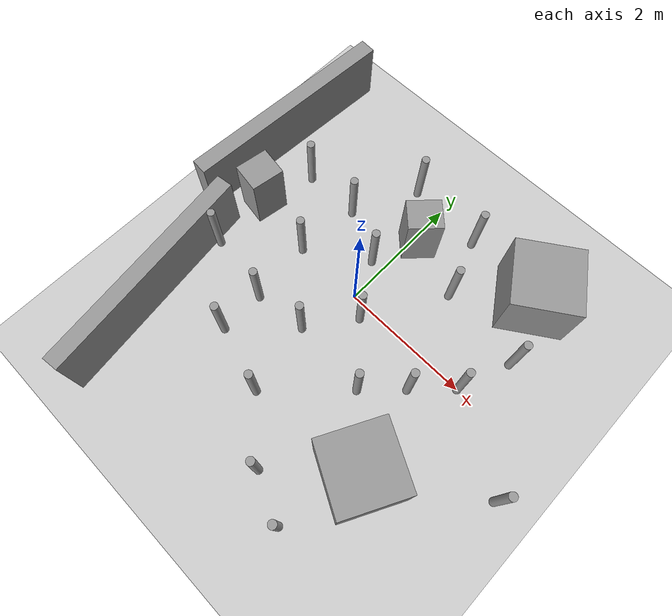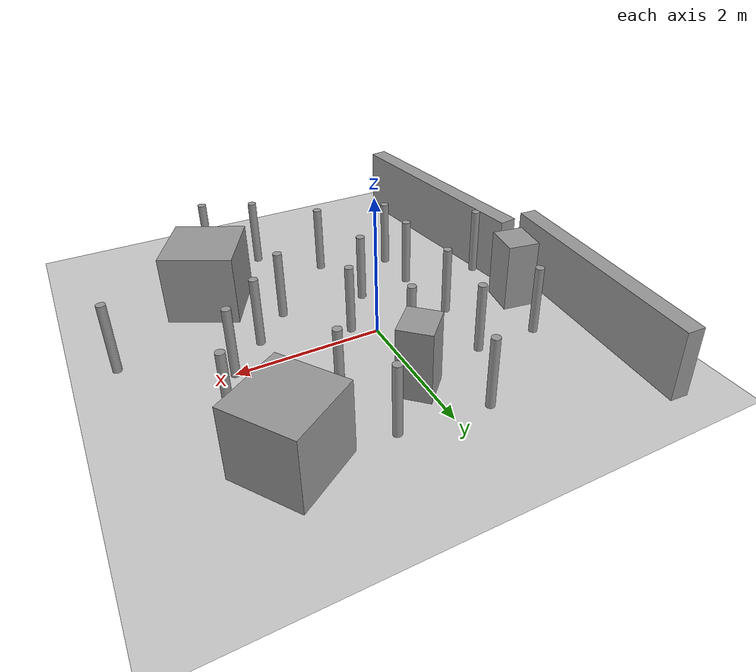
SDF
<sdf version="1.7">
 <world name="default">
  <light name="sun" type="directional">
   <pose>0 0 10 0 -0 0</pose>
   <diffuse>0.8 0.8 0.8 1</diffuse>
   <specular>0.2 0.2 0.2 1</specular>
   <attenuation>
    <range>1000</range>
    <constant>0.9</constant>
    <linear>0.01</linear>
    <quadratic>0.001</quadratic>
   </attenuation>
   <direction>-0.5 0.1 -0.9</direction>
   <spot><inner_angle>0</inner_angle><outer_angle>0</outer_angle><falloff>0</falloff></spot>
  </light>
  <model name="ground_plane">
   <static>1</static>
   <link name="link">
    <collision name="collision">
     <geometry><plane><normal>0 0 1</normal><size>100 100</size></plane></geometry>
     <surface><friction><ode><mu>100</mu><mu2>50</mu2></ode></friction></surface>
    </collision>
    <visual name="visual">
     <cast_shadows>0</cast_shadows>
     <geometry><plane><normal>0 0 1</normal><size>100 100</size></plane></geometry>
     <material>
      <script><uri>file://media/materials/scripts/gazebo.material</uri><name>Gazebo/Grey</name></script>
     </material>
    </visual>
   </link>
  </model>
  <gravity>0 0 -9.8</gravity>
  <magnetic_field>6e-06 2.3e-05 -4.2e-05</magnetic_field>
  <atmosphere type="adiabatic"/>
  <physics type="ode">
   <max_step_size>0.001</max_step_size>
   <real_time_factor>1</real_time_factor>
   <real_time_update_rate>1000</real_time_update_rate>
  </physics>
  <scene><ambient>0.4 0.4 0.4 1</ambient><background>0.7 0.7 0.7 1</background><shadows>1</shadows></scene>
  <spherical_coordinates>
   <surface_model>EARTH_WGS84</surface_model>
   <latitude_deg>0</latitude_deg>
   <longitude_deg>0</longitude_deg>
   <elevation>0</elevation>
   <heading_deg>0</heading_deg>
  </spherical_coordinates>
  <model name="unit_cylinder_0_clone">
   <pose>1.00003 -0.99995 0.499998 0 -0 9.8e-05</pose>
   <link name="link">
    <inertial>
     <mass>1</mass>
     <inertia><ixx>0.145833</ixx><ixy>0</ixy><ixz>0</ixz><iyy>0.145833</iyy><iyz>0</iyz><izz>0.125</izz></inertia>
    </inertial>
    <collision name="collision">
     <geometry><cylinder><radius>0.06</radius><length>1</length></cylinder></geometry>
    </collision>
    <visual name="visual">
     <geometry><cylinder><radius>0.06</radius><length>1</length></cylinder></geometry>
     <material>
      <script><name>Gazebo/Grey</name><uri>file://media/materials/scripts/gazebo.material</uri></script>
     </material>
    </visual>
   </link>
  </model>
  <model name="unit_cylinder_0_clone_0">
   <pose>-0.999969 1.00007 0.499993 -1e-06 -0 0.000851</pose>
   <link name="link">
    <inertial>
     <mass>1</mass>
     <inertia><ixx>0.145833</ixx><ixy>0</ixy><ixz>0</ixz><iyy>0.145833</iyy><iyz>0</iyz><izz>0.125</izz></inertia>
    </inertial>
    <collision name="collision">
     <geometry><cylinder><radius>0.06</radius><length>1</length></cylinder></geometry>
    </collision>
    <visual name="visual">
     <geometry><cylinder><radius>0.06</radius><length>1</length></cylinder></geometry>
     <material>
      <script><name>Gazebo/Grey</name><uri>file://media/materials/scripts/gazebo.material</uri></script>
     </material>
    </visual>
   </link>
  </model>
  <model name="unit_cylinder_0_clone_1">
   <pose>-0.999974 -0.99997 0.499995 0 0 -0.00265</pose>
   <link name="link">
    <inertial>
     <mass>1</mass>
     <inertia><ixx>0.145833</ixx><ixy>0</ixy><ixz>0</ixz><iyy>0.145833</iyy><iyz>0</iyz><izz>0.125</izz></inertia>
    </inertial>
    <collision name="collision">
     <geometry><cylinder><radius>0.06</radius><length>1</length></cylinder></geometry>
    </collision>
    <visual name="visual">
     <geometry><cylinder><radius>0.06</radius><length>1</length></cylinder></geometry>
     <material>
      <script><name>Gazebo/Grey</name><uri>file://media/materials/scripts/gazebo.material</uri></script>
     </material>
    </visual>
   </link>
  </model>
  <model name="unit_cylinder_0_clone_2">
   <pose>2.00003 5e-05 0.499998 0 -0 0.000447</pose>
   <link name="link">
    <inertial>
     <mass>1</mass>
     <inertia><ixx>0.145833</ixx><ixy>0</ixy><ixz>0</ixz><iyy>0.145833</iyy><iyz>0</iyz><izz>0.125</izz></inertia>
    </inertial>
    <collision name="collision">
     <geometry><cylinder><radius>0.06</radius><length>1</length></cylinder></geometry>
    </collision>
    <visual name="visual">
     <geometry><cylinder><radius>0.06</radius><length>1</length></cylinder></geometry>
     <material>
      <script><name>Gazebo/Grey</name><uri>file://media/materials/scripts/gazebo.material</uri></script>
     </material>
    </visual>
   </link>
  </model>
  <model name="unit_cylinder_0_clone_3">
   <pose>2.4e-05 -1.99996 0.499992 0 -0 0.000186</pose>
   <link name="link">
    <inertial>
     <mass>1</mass>
     <inertia><ixx>0.145833</ixx><ixy>0</ixy><ixz>0</ixz><iyy>0.145833</iyy><iyz>0</iyz><izz>0.125</izz></inertia>
    </inertial>
    <collision name="collision">
     <geometry><cylinder><radius>0.06</radius><length>1</length></cylinder></geometry>
    </collision>
    <visual name="visual">
     <geometry><cylinder><radius>0.06</radius><length>1</length></cylinder></geometry>
     <material>
      <script><name>Gazebo/Grey</name><uri>file://media/materials/scripts/gazebo.material</uri></script>
     </material>
    </visual>
   </link>
  </model>
  <model name="unit_cylinder_0_clone_4">
   <pose>1.50003 -2.99995 0.499995 0 -0 0.000107</pose>
   <link name="link">
    <inertial>
     <mass>1</mass>
     <inertia><ixx>0.145833</ixx><ixy>0</ixy><ixz>0</ixz><iyy>0.145833</iyy><iyz>0</iyz><izz>0.125</izz></inertia>
    </inertial>
    <collision name="collision">
     <geometry><cylinder><radius>0.06</radius><length>1</length></cylinder></geometry>
    </collision>
    <visual name="visual">
     <geometry><cylinder><radius>0.06</radius><length>1</length></cylinder></geometry>
     <material>
      <script><name>Gazebo/Grey</name><uri>file://media/materials/scripts/gazebo.material</uri></script>
     </material>
    </visual>
   </link>
  </model>
  <model name="unit_cylinder_0_clone_5">
   <pose>-0.499977 2.00004 0.499993 0 -0 0.000214</pose>
   <link name="link">
    <inertial>
     <mass>1</mass>
     <inertia><ixx>0.145833</ixx><ixy>0</ixy><ixz>0</ixz><iyy>0.145833</iyy><iyz>0</iyz><izz>0.125</izz></inertia>
    </inertial>
    <collision name="collision">
     <geometry><cylinder><radius>0.06</radius><length>1</length></cylinder></geometry>
    </collision>
    <visual name="visual">
     <geometry><cylinder><radius>0.06</radius><length>1</length></cylinder></geometry>
     <material>
      <script><name>Gazebo/Grey</name><uri>file://media/materials/scripts/gazebo.material</uri></script>
     </material>
    </visual>
   </link>
  </model>
  <model name="unit_cylinder_0_clone_6">
   <pose>-0.999979 -1.69997 0.499993 0 -0 0.000115</pose>
   <link name="link">
    <inertial>
     <mass>1</mass>
     <inertia><ixx>0.145833</ixx><ixy>0</ixy><ixz>0</ixz><iyy>0.145833</iyy><iyz>0</iyz><izz>0.125</izz></inertia>
    </inertial>
    <collision name="collision">
     <geometry><cylinder><radius>0.06</radius><length>1</length></cylinder></geometry>
    </collision>
    <visual name="visual">
     <geometry><cylinder><radius>0.06</radius><length>1</length></cylinder></geometry>
     <material>
      <script><name>Gazebo/Grey</name><uri>file://media/materials/scripts/gazebo.material</uri></script>
     </material>
    </visual>
   </link>
  </model>
  <model name="unit_cylinder_0_clone_7">
   <pose>2.30002 0.800029 0.499998 -0 -0 -6.7e-05</pose>
   <link name="link">
    <inertial>
     <mass>1</mass>
     <inertia><ixx>0.145833</ixx><ixy>0</ixy><ixz>0</ixz><iyy>0.145833</iyy><iyz>0</iyz><izz>0.125</izz></inertia>
    </inertial>
    <collision name="collision">
     <geometry><cylinder><radius>0.06</radius><length>1</length></cylinder></geometry>
    </collision>
    <visual name="visual">
     <geometry><cylinder><radius>0.06</radius><length>1</length></cylinder></geometry>
     <material>
      <script><name>Gazebo/Grey</name><uri>file://media/materials/scripts/gazebo.material</uri></script>
     </material>
    </visual>
   </link>
  </model>
  <model name="unit_cylinder_0_clone_8">
   <pose>-1.09998 3.6e-05 0.499995 0 -0 3e-06</pose>
   <link name="link">
    <inertial>
     <mass>1</mass>
     <inertia><ixx>0.145833</ixx><ixy>0</ixy><ixz>0</ixz><iyy>0.145833</iyy><iyz>0</iyz><izz>0.125</izz></inertia>
    </inertial>
    <collision name="collision">
     <geometry><cylinder><radius>0.06</radius><length>1</length></cylinder></geometry>
    </collision>
    <visual name="visual">
     <geometry><cylinder><radius>0.06</radius><length>1</length></cylinder></geometry>
     <material>
      <script><name>Gazebo/Grey</name><uri>file://media/materials/scripts/gazebo.material</uri></script>
     </material>
    </visual>
   </link>
  </model>
  <model name="unit_cylinder_0_clone_9">
   <pose>3.30002 -0.799963 0.499992 1e-06 0 0.000322</pose>
   <link name="link">
    <inertial>
     <mass>1</mass>
     <inertia><ixx>0.145833</ixx><ixy>0</ixy><ixz>0</ixz><iyy>0.145833</iyy><iyz>0</iyz><izz>0.125</izz></inertia>
    </inertial>
    <collision name="collision">
     <geometry><cylinder><radius>0.06</radius><length>1</length></cylinder></geometry>
    </collision>
    <visual name="visual">
     <geometry><cylinder><radius>0.06</radius><length>1</length></cylinder></geometry>
     <material>
      <script><name>Gazebo/Grey</name><uri>file://media/materials/scripts/gazebo.material</uri></script>
     </material>
    </visual>
   </link>
  </model>
  <model name="unit_cylinder_0_clone_10">
   <pose>-1.89998 1.00002 0.499995 0 0 -0.00189</pose>
   <link name="link">
    <inertial>
     <mass>1</mass>
     <inertia><ixx>0.145833</ixx><ixy>0</ixy><ixz>0</ixz><iyy>0.145833</iyy><iyz>0</iyz><izz>0.125</izz></inertia>
    </inertial>
    <collision name="collision">
     <geometry><cylinder><radius>0.06</radius><length>1</length></cylinder></geometry>
    </collision>
    <visual name="visual">
     <geometry><cylinder><radius>0.06</radius><length>1</length></cylinder></geometry>
     <material>
      <script><name>Gazebo/Grey</name><uri>file://media/materials/scripts/gazebo.material</uri></script>
     </material>
    </visual>
   </link>
  </model>
  <model name="unit_cylinder_0_clone_11">
   <pose>0.800016 -2.69997 0.499999 0 -0 6.7e-05</pose>
   <link name="link">
    <inertial>
     <mass>1</mass>
     <inertia><ixx>0.145833</ixx><ixy>0</ixy><ixz>0</ixz><iyy>0.145833</iyy><iyz>0</iyz><izz>0.125</izz></inertia>
    </inertial>
    <collision name="collision">
     <geometry><cylinder><radius>0.06</radius><length>1</length></cylinder></geometry>
    </collision>
    <visual name="visual">
     <geometry><cylinder><radius>0.06</radius><length>1</length></cylinder></geometry>
     <material>
      <script><name>Gazebo/Grey</name><uri>file://media/materials/scripts/gazebo.material</uri></script>
     </material>
    </visual>
   </link>
  </model>
  <model name="unit_cylinder_0_clone_12">
   <pose>0.300013 -0.199973 0.499991 -1e-06 -1e-06 0.000151</pose>
   <link name="link">
    <inertial>
     <mass>1</mass>
     <inertia><ixx>0.145833</ixx><ixy>0</ixy><ixz>0</ixz><iyy>0.145833</iyy><iyz>0</iyz><izz>0.125</izz></inertia>
    </inertial>
    <collision name="collision">
     <geometry><cylinder><radius>0.06</radius><length>1</length></cylinder></geometry>
    </collision>
    <visual name="visual">
     <geometry><cylinder><radius>0.06</radius><length>1</length></cylinder></geometry>
     <material>
      <script><name>Gazebo/Grey</name><uri>file://media/materials/scripts/gazebo.material</uri></script>
     </material>
    </visual>
   </link>
  </model>
  <model name="unit_cylinder_0_clone_13">
   <pose>-0.199987 0.600024 0.499992 0 -0 0.000212</pose>
   <link name="link">
    <inertial>
     <mass>1</mass>
     <inertia><ixx>0.145833</ixx><ixy>0</ixy><ixz>0</ixz><iyy>0.145833</iyy><iyz>0</iyz><izz>0.125</izz></inertia>
    </inertial>
    <collision name="collision">
     <geometry><cylinder><radius>0.06</radius><length>1</length></cylinder></geometry>
    </collision>
    <visual name="visual">
     <geometry><cylinder><radius>0.06</radius><length>1</length></cylinder></geometry>
     <material>
      <script><name>Gazebo/Grey</name><uri>file://media/materials/scripts/gazebo.material</uri></script>
     </material>
    </visual>
   </link>
  </model>
  <model name="unit_cylinder_0_clone_14">
   <pose>-2.0939 -0.803782 0.499996 1e-06 1e-06 0.001607</pose>
   <link name="link">
    <inertial>
     <mass>1</mass>
     <inertia><ixx>0.145833</ixx><ixy>0</ixy><ixz>0</ixz><iyy>0.145833</iyy><iyz>0</iyz><izz>0.125</izz></inertia>
    </inertial>
    <collision name="collision">
     <geometry><cylinder><radius>0.06</radius><length>1</length></cylinder></geometry>
    </collision>
    <visual name="visual">
     <geometry><cylinder><radius>0.06</radius><length>1</length></cylinder></geometry>
     <material>
      <script><name>Gazebo/Grey</name><uri>file://media/materials/scripts/gazebo.material</uri></script>
     </material>
    </visual>
   </link>
  </model>
  <model name="unit_cylinder_0_clone_15">
   <pose>-0.199989 -0.899979 0.499998 0 -0 0.000303</pose>
   <link name="link">
    <inertial>
     <mass>1</mass>
     <inertia><ixx>0.145833</ixx><ixy>0</ixy><ixz>0</ixz><iyy>0.145833</iyy><iyz>0</iyz><izz>0.125</izz></inertia>
    </inertial>
    <collision name="collision">
     <geometry><cylinder><radius>0.06</radius><length>1</length></cylinder></geometry>
    </collision>
    <visual name="visual">
     <geometry><cylinder><radius>0.06</radius><length>1</length></cylinder></geometry>
     <material>
      <script><name>Gazebo/Grey</name><uri>file://media/materials/scripts/gazebo.material</uri></script>
     </material>
    </visual>
   </link>
  </model>
  <model name="unit_cylinder_0_clone_16">
   <pose>0.700009 1.90002 0.499992 0 -0 0.000216</pose>
   <link name="link">
    <inertial>
     <mass>1</mass>
     <inertia><ixx>0.145833</ixx><ixy>0</ixy><ixz>0</ixz><iyy>0.145833</iyy><iyz>0</iyz><izz>0.125</izz></inertia>
    </inertial>
    <collision name="collision">
     <geometry><cylinder><radius>0.06</radius><length>1</length></cylinder></geometry>
    </collision>
    <visual name="visual">
     <geometry><cylinder><radius>0.06</radius><length>1</length></cylinder></geometry>
     <material>
      <script><name>Gazebo/Grey</name><uri>file://media/materials/scripts/gazebo.material</uri></script>
     </material>
    </visual>
   </link>
  </model>
  <model name="unit_cylinder_0_clone_17">
   <pose>1.50001 -0.499977 0.499993 -1e-06 -0 0.000373</pose>
   <link name="link">
    <inertial>
     <mass>1</mass>
     <inertia><ixx>0.145833</ixx><ixy>0</ixy><ixz>0</ixz><iyy>0.145833</iyy><iyz>0</iyz><izz>0.125</izz></inertia>
    </inertial>
    <collision name="collision">
     <geometry><cylinder><radius>0.06</radius><length>1</length></cylinder></geometry>
    </collision>
    <visual name="visual">
     <geometry><cylinder><radius>0.06</radius><length>1</length></cylinder></geometry>
     <material>
      <script><name>Gazebo/Grey</name><uri>file://media/materials/scripts/gazebo.material</uri></script>
     </material>
    </visual>
   </link>
  </model>
  <model name="unit_cylinder_0_clone_13_clone">
   <pose>1.00001 1.00002 0.499993 0 -0 0.000246</pose>
   <link name="link">
    <inertial>
     <mass>1</mass>
     <inertia><ixx>0.145833</ixx><ixy>0</ixy><ixz>0</ixz><iyy>0.145833</iyy><iyz>0</iyz><izz>0.125</izz></inertia>
    </inertial>
    <collision name="collision">
     <geometry><cylinder><radius>0.06</radius><length>1</length></cylinder></geometry>
    </collision>
    <visual name="visual">
     <geometry><cylinder><radius>0.06</radius><length>1</length></cylinder></geometry>
     <material>
      <script><name>Gazebo/Grey</name><uri>file://media/materials/scripts/gazebo.material</uri></script>
     </material>
    </visual>
   </link>
  </model>
  <model name="unit_box">
   <pose>-2.12746 -2.00871 0.499732 -0.000144 -5e-06 0.128677</pose>
   <link name="link">
    <inertial>
     <mass>1</mass>
     <inertia>
      <ixx>0.166667</ixx>
      <ixy>0</ixy>
      <ixz>0</ixz>
      <iyy>0.166667</iyy>
      <iyz>0</iyz>
      <izz>0.166667</izz>
     </inertia>
    </inertial>
    <collision name="collision"><geometry><box><size>0.255785 3.41181 1</size></box></geometry></collision>
    <visual name="visual">
     <geometry><box><size>0.255785 3.41181 1</size></box></geometry>
     <material>
      <script><name>Gazebo/Grey</name><uri>file://media/materials/scripts/gazebo.material</uri></script>
     </material>
    </visual>
   </link>
  </model>
  <model name="unit_box_0">
   <pose>1.80897 -1.78974 0.5 0 0 -0.486908</pose>
   <link name="link">
    <inertial>
     <mass>1</mass>
     <inertia>
      <ixx>0.166667</ixx>
      <ixy>0</ixy>
      <ixz>0</ixz>
      <iyy>0.166667</iyy>
      <iyz>0</iyz>
      <izz>0.166667</izz>
     </inertia>
    </inertial>
    <collision name="collision"><geometry><box><size>1 1 1</size></box></geometry></collision>
    <visual name="visual">
     <geometry><box><size>1 1 1</size></box></geometry>
     <material>
      <script><name>Gazebo/Grey</name><uri>file://media/materials/scripts/gazebo.material</uri></script>
     </material>
    </visual>
   </link>
  </model>
  <model name="unit_box_0_clone">
   <pose>-2.12477 0.167232 0.5 -0 -0 -0.157152</pose>
   <link name="link">
    <inertial>
     <mass>1</mass>
     <inertia>
      <ixx>0.166667</ixx>
      <ixy>0</ixy>
      <ixz>0</ixz>
      <iyy>0.166667</iyy>
      <iyz>0</iyz>
      <izz>0.166667</izz>
     </inertia>
    </inertial>
    <collision name="collision"><geometry><box><size>0.457044 0.515486 1</size></box></geometry></collision>
    <visual name="visual">
     <geometry><box><size>0.457044 0.515486 1</size></box></geometry>
     <material>
      <script><name>Gazebo/Grey</name><uri>file://media/materials/scripts/gazebo.material</uri></script>
     </material>
    </visual>
   </link>
  </model>
  <model name="unit_box_0_clone_clone">
   <pose>0.087883 1.30808 0.5 0 0 -0.767688</pose>
   <link name="link">
    <inertial>
     <mass>1</mass>
     <inertia>
      <ixx>0.166667</ixx>
      <ixy>0</ixy>
      <ixz>0</ixz>
      <iyy>0.166667</iyy>
      <iyz>0</iyz>
      <izz>0.166667</izz>
     </inertia>
    </inertial>
    <collision name="collision"><geometry><box><size>0.457044 0.515486 1</size></box></geometry></collision>
    <visual name="visual">
     <geometry><box><size>0.457044 0.515486 1</size></box></geometry>
     <material>
      <script><name>Gazebo/Grey</name><uri>file://media/materials/scripts/gazebo.material</uri></script>
     </material>
    </visual>
   </link>
  </model>
  <model name="unit_box_clone">
   <pose>-2.68773 1.27099 0.499662 0.000199 7e-06 -0.060247</pose>
   <link name="link">
    <inertial>
     <mass>1</mass>
     <inertia>
      <ixx>0.166667</ixx>
      <ixy>0</ixy>
      <ixz>0</ixz>
      <iyy>0.166667</iyy>
      <iyz>0</iyz>
      <izz>0.166667</izz>
     </inertia>
    </inertial>
    <collision name="collision"><geometry><box><size>0.255785 3.41181 1</size></box></geometry></collision>
    <visual name="visual">
     <geometry><box><size>0.255785 3.41181 1</size></box></geometry>
     <material>
      <script><name>Gazebo/Grey</name><uri>file://media/materials/scripts/gazebo.material</uri></script>
     </material>
    </visual>
   </link>
  </model>
  <model name="unit_box_1">
   <pose>1.91563 1.77393 0.5 0 -0 0.586386</pose>
   <link name="link">
    <inertial>
     <mass>1</mass>
     <inertia>
      <ixx>0.166667</ixx>
      <ixy>0</ixy>
      <ixz>0</ixz>
      <iyy>0.166667</iyy>
      <iyz>0</iyz>
      <izz>0.166667</izz>
     </inertia>
    </inertial>
    <collision name="collision"><geometry><box><size>1 1 1</size></box></geometry></collision>
    <visual name="visual">
     <geometry><box><size>1 1 1</size></box></geometry>
     <material>
      <script><name>Gazebo/Grey</name><uri>file://media/materials/scripts/gazebo.material</uri></script>
     </material>
    </visual>
   </link>
  </model>
 </world>
</sdf>
